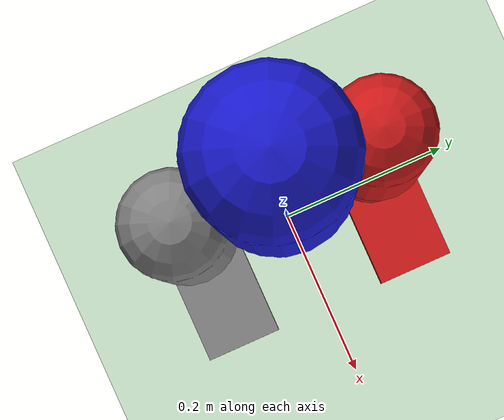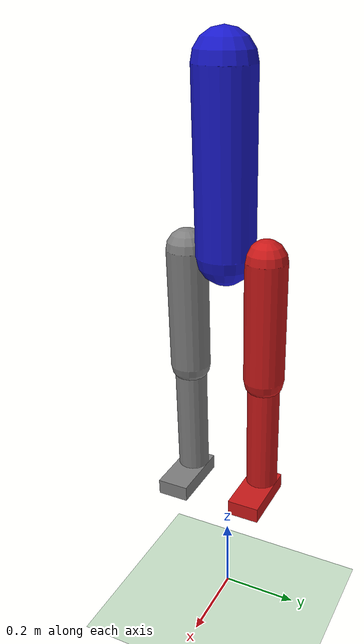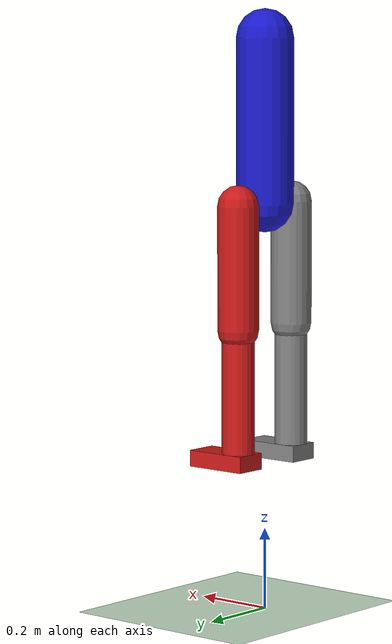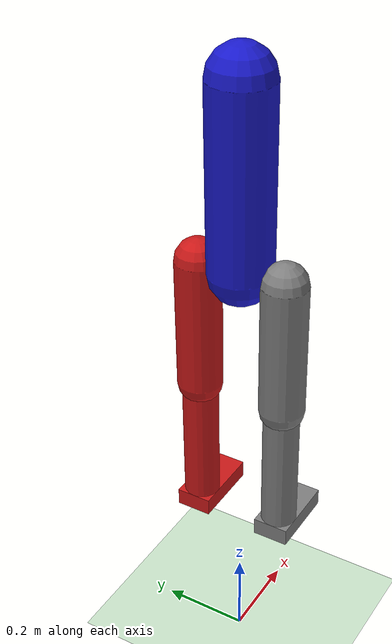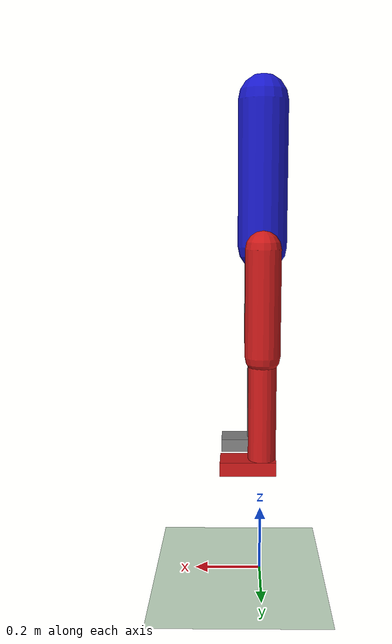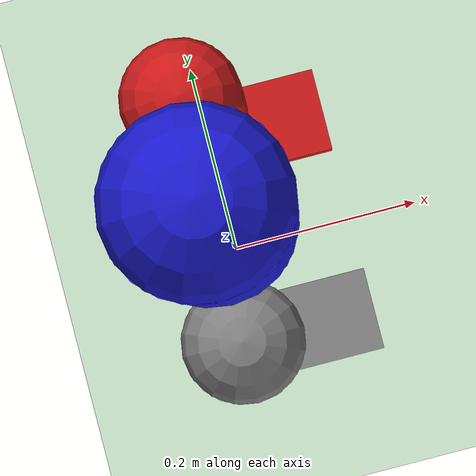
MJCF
<mujoco model="anthropos_v1">
    <compiler angle="degree" coordinate="local" inertiafromgeom="true"/>
    <option integrator="RK4" timestep="0.002" gravity="0 0 -9.81"/>

    <worldbody>
        <light diffuse=".5 .5 .5" pos="0 0 3" dir="0 0 -1"/>
        <geom name="floor" type="plane" size="0 0 .25" rgba=".8 .9 .8 1"/>

        <body name="torso" pos="0 0 1.2">
            <freejoint name="root"/>
            <geom name="torso_geom" type="capsule" size="0.07 0.2" rgba=".1 .1 .8 1"/>

            <body name="r_thigh" pos="0 -0.1 -0.2">
                <joint name="r_hip" type="hinge" axis="0 1 0" range="-20 100"/>
                <geom type="capsule" size="0.05 0.15" pos="0 0 -0.15"/>
                <body name="r_shin" pos="0 0 -0.3">
                    <joint name="r_knee" type="hinge" axis="0 1 0" range="-150 0"/>
                    <geom type="capsule" size="0.04 0.15" pos="0 0 -0.15"/>
                    <body name="r_foot" pos="0 0 -0.3">
                        <joint name="r_ankle" type="hinge" axis="0 1 0" range="-30 30"/>
                        <geom type="box" size="0.08 0.04 0.02" pos="0.04 0 -0.02"/>
                    </body>
                </body>
            </body>

            <body name="l_thigh" pos="0 0.1 -0.2">
                <joint name="l_hip" type="hinge" axis="0 1 0" range="-20 100"/>
                <geom type="capsule" size="0.05 0.15" pos="0 0 -0.15" rgba=".8 .1 .1 1"/>
                <body name="l_shin" pos="0 0 -0.3">
                    <joint name="l_knee" type="hinge" axis="0 1 0" range="-150 0"/>
                    <geom type="capsule" size="0.04 0.15" pos="0 0 -0.15" rgba=".8 .1 .1 1"/>
                    <body name="l_foot" pos="0 0 -0.3">
                        <joint name="l_ankle" type="hinge" axis="0 1 0" range="-30 30"/>
                        <geom type="box" size="0.08 0.04 0.02" pos="0.04 0 -0.02" rgba=".8 .1 .1 1"/>
                    </body>
                </body>
            </body>
        </body>
    </worldbody>

    <actuator>
        <motor name="r_hip_m" joint="r_hip" gear="150"/>
        <motor name="r_knee_m" joint="r_knee" gear="150"/>
        <motor name="l_hip_m" joint="l_hip" gear="150"/>
        <motor name="l_knee_m" joint="l_knee" gear="150"/>
    </actuator>
</mujoco>
